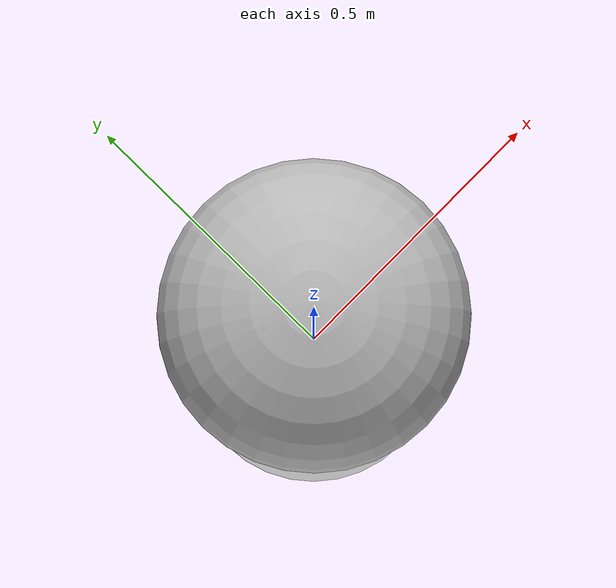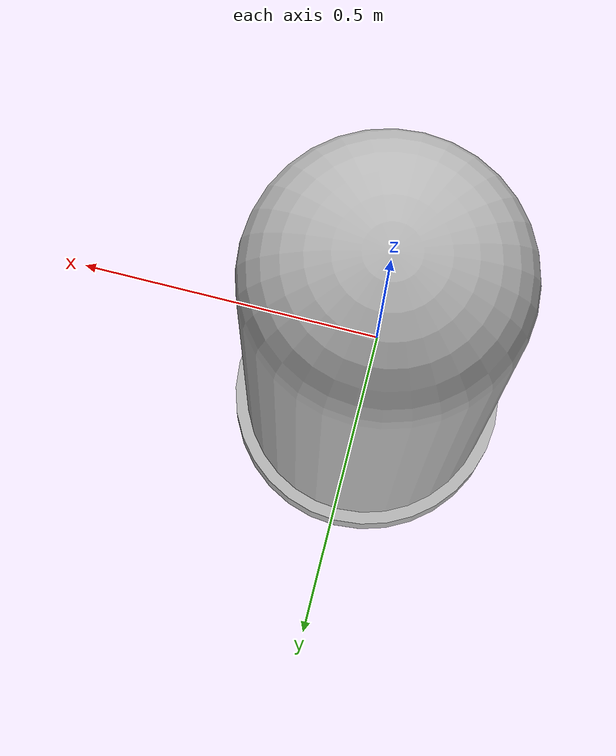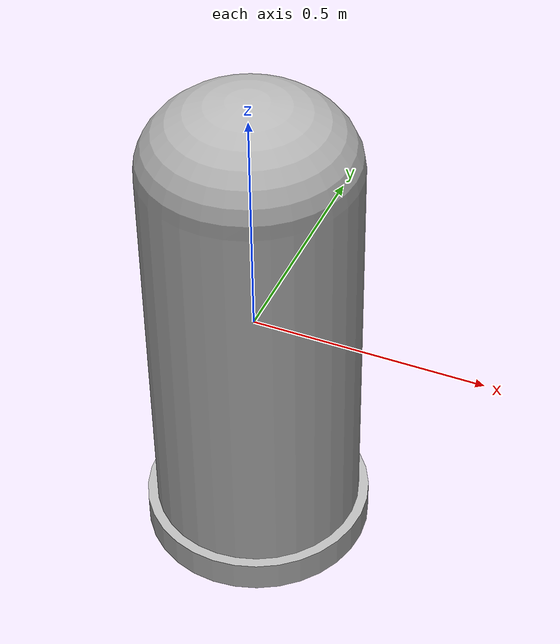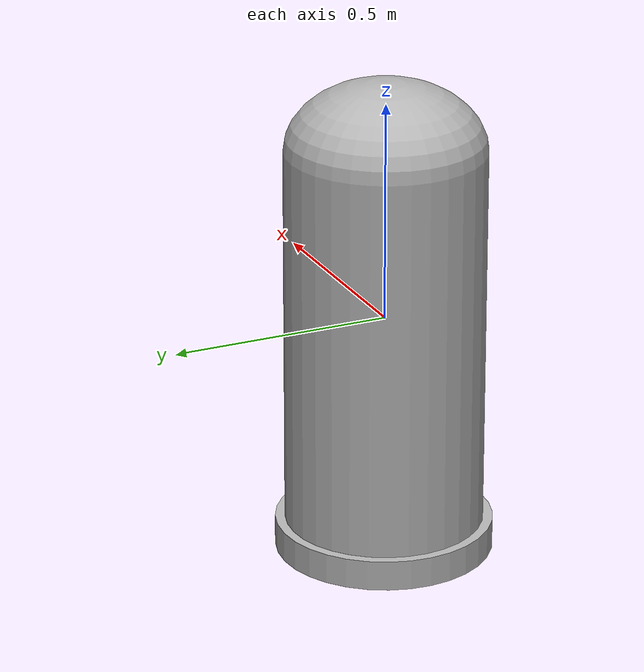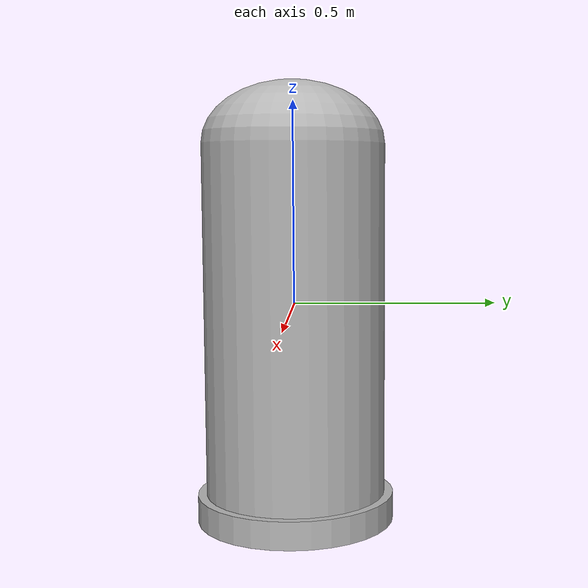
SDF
<?xml version="1.0" ?>
<sdf version="1.7">
  <model name="mavi_duba">
    <static>false</static>
    <link name="link">

      <inertial>
        <pose>0 0 0 0 0 0</pose>
        <mass>0.5</mass>
        <inertia>
          <ixx>0.05</ixx><ixy>0</ixy><ixz>0</ixz>
          <iyy>0.05</iyy><iyz>0</iyz>
          <izz>0.05</izz>
        </inertia>
      </inertial>

      <visual name="visual">
        <pose>0 0 -0.55 0 0 0</pose>
        <geometry>
          <mesh>
            <uri>model://model_files/meshes/mavi_duba.obj</uri>
          </mesh>
        </geometry>
      </visual>

      <collision name="collision">
        <pose>0 0 0 0 0 0</pose>
        <geometry>
          <box>
            <size>0.493994 0.493994 1.1</size>
          </box>
        </geometry>
      </collision>

    </link>
  </model>
</sdf>
